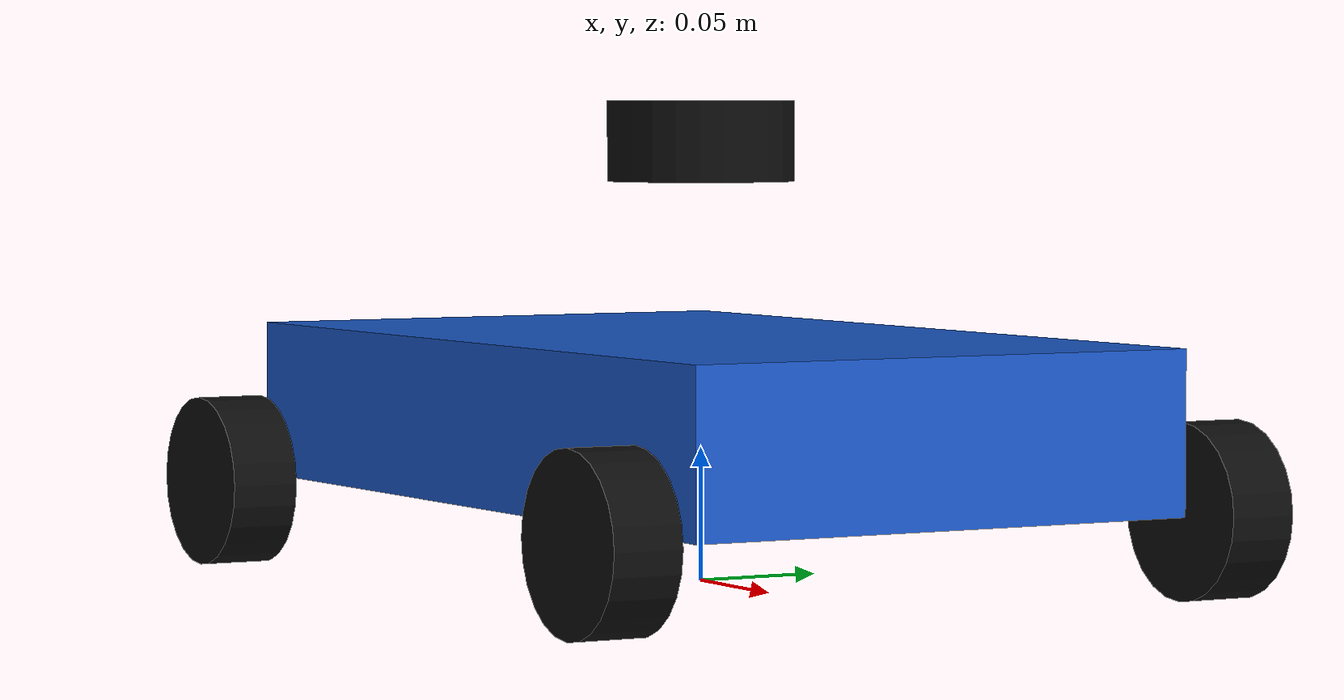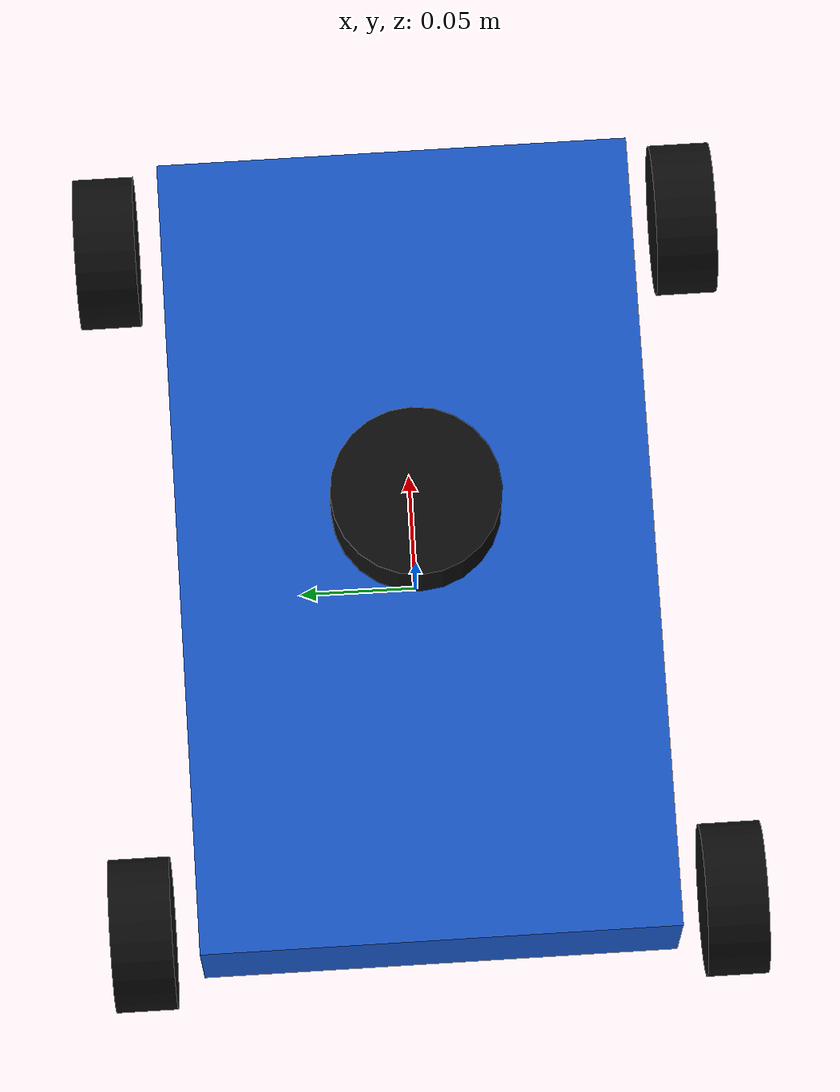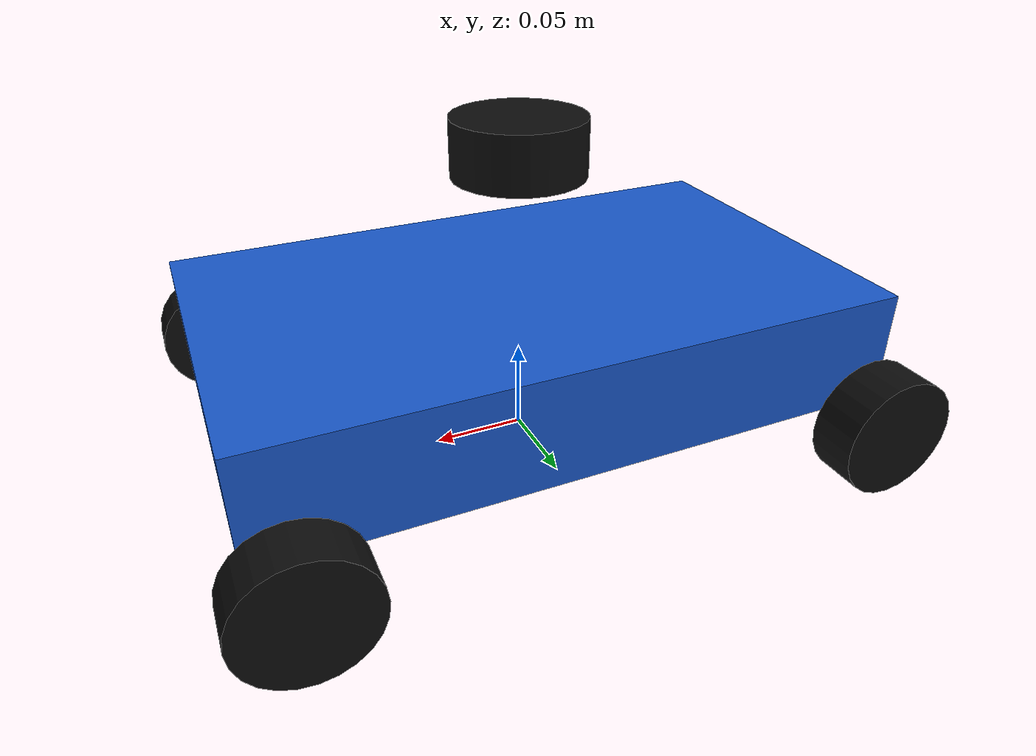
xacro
<?xml version="1.0"?>
<robot name="mc4" xmlns:xacro="http://www.ros.org/wiki/xacro">

  <!-- ===== Tunable dimensions (metres / radians) ===== -->
  <xacro:arg name="four_wheel"       default="true"/>
  <xacro:arg name="wheel_radius"     default="0.0325"/>
  <xacro:arg name="wheel_separation" default="0.250"/>
  <xacro:arg name="wheelbase"        default="0.300"/>
  <xacro:arg name="wheel_width"      default="0.026"/>
  <xacro:arg name="chassis_length"   default="0.340"/>
  <xacro:arg name="chassis_width"    default="0.200"/>
  <xacro:arg name="chassis_height"   default="0.060"/>
  <xacro:arg name="lidar_x"          default="0.0"/>
  <xacro:arg name="lidar_z"          default="0.180"/>
  <!-- Use lidar_yaw:=3.14159 if scans appear behind the robot in RViz -->
  <xacro:arg name="lidar_yaw"        default="0.0"/>

  <xacro:property name="wr"  value="$(arg wheel_radius)"/>
  <xacro:property name="ws"  value="$(arg wheel_separation)"/>
  <xacro:property name="wb"  value="$(arg wheelbase)"/>
  <xacro:property name="ww"  value="$(arg wheel_width)"/>
  <xacro:property name="cl"  value="$(arg chassis_length)"/>
  <xacro:property name="cw"  value="$(arg chassis_width)"/>
  <xacro:property name="ch"  value="$(arg chassis_height)"/>

  <material name="mc4_blue"><color rgba="0.10 0.35 0.80 1.0"/></material>
  <material name="black"><color rgba="0.05 0.05 0.05 1.0"/></material>
  <material name="grey"><color rgba="0.60 0.60 0.60 1.0"/></material>

  <!-- base_footprint: on the ground at the robot's rotation centre. Nav2/SLAM use this frame. -->
  <link name="base_footprint"/>

  <link name="base_link">
    <visual>
      <origin xyz="0 0 ${ch/2}"/>
      <geometry><box size="${cl} ${cw} ${ch}"/></geometry>
      <material name="mc4_blue"/>
    </visual>
    <collision>
      <origin xyz="0 0 ${ch/2}"/>
      <geometry><box size="${cl} ${cw} ${ch}"/></geometry>
    </collision>
    <inertial>
      <origin xyz="0 0 ${ch/2}"/>
      <mass value="1.5"/>
      <inertia ixx="0.006" ixy="0" ixz="0" iyy="0.015" iyz="0" izz="0.019"/>
    </inertial>
  </link>

  <joint name="base_joint" type="fixed">
    <parent link="base_footprint"/>
    <child link="base_link"/>
    <origin xyz="0 0 ${wr}"/>
  </joint>

  <xacro:macro name="wheel" params="name x y">
    <link name="${name}_link">
      <visual>
        <origin rpy="${pi/2} 0 0"/>
        <geometry><cylinder radius="${wr}" length="${ww}"/></geometry>
        <material name="black"/>
      </visual>
      <collision>
        <origin rpy="${pi/2} 0 0"/>
        <geometry><cylinder radius="${wr}" length="${ww}"/></geometry>
      </collision>
      <inertial>
        <mass value="0.06"/>
        <inertia ixx="0.00002" ixy="0" ixz="0" iyy="0.00003" iyz="0" izz="0.00002"/>
      </inertial>
    </link>
    <joint name="${name}_joint" type="continuous">
      <parent link="base_link"/>
      <child link="${name}_link"/>
      <origin xyz="${x} ${y} 0"/>
      <axis xyz="0 1 0"/>
    </joint>
  </xacro:macro>

  <!-- 4WD skid steer: wheels at +/- wheelbase/2, rotation centre in the middle -->
  <xacro:if value="$(arg four_wheel)">
    <xacro:wheel name="left_wheel"       x="${wb/2}"  y="${ws/2}"/>
    <xacro:wheel name="right_wheel"      x="${wb/2}"  y="${-ws/2}"/>
    <xacro:wheel name="rear_left_wheel"  x="${-wb/2}" y="${ws/2}"/>
    <xacro:wheel name="rear_right_wheel" x="${-wb/2}" y="${-ws/2}"/>
  </xacro:if>

  <!-- 2 drive wheels + rear caster -->
  <xacro:unless value="$(arg four_wheel)">
    <xacro:wheel name="left_wheel"  x="0" y="${ws/2}"/>
    <xacro:wheel name="right_wheel" x="0" y="${-ws/2}"/>
    <link name="caster_link">
      <visual>
        <geometry><sphere radius="${wr/2}"/></geometry>
        <material name="grey"/>
      </visual>
      <collision>
        <geometry><sphere radius="${wr/2}"/></geometry>
      </collision>
    </link>
    <joint name="caster_joint" type="fixed">
      <parent link="base_link"/>
      <child link="caster_link"/>
      <origin xyz="${-cl/2 + wr/2} 0 ${-wr/2}"/>
    </joint>
  </xacro:unless>

  <!-- 2D lidar. Frame name must match the lidar driver's frame_id (laser_frame). -->
  <link name="laser_frame">
    <visual>
      <origin xyz="0 0 -0.015"/>
      <geometry><cylinder radius="0.035" length="0.03"/></geometry>
      <material name="black"/>
    </visual>
    <collision>
      <origin xyz="0 0 -0.015"/>
      <geometry><cylinder radius="0.035" length="0.03"/></geometry>
    </collision>
  </link>
  <joint name="laser_joint" type="fixed">
    <parent link="base_footprint"/>
    <child link="laser_frame"/>
    <origin xyz="$(arg lidar_x) 0 $(arg lidar_z)" rpy="0 0 $(arg lidar_yaw)"/>
  </joint>

</robot>
